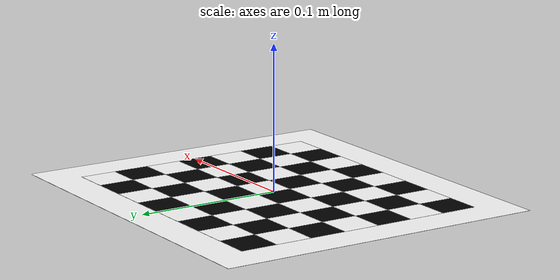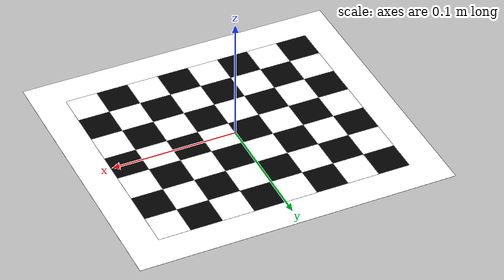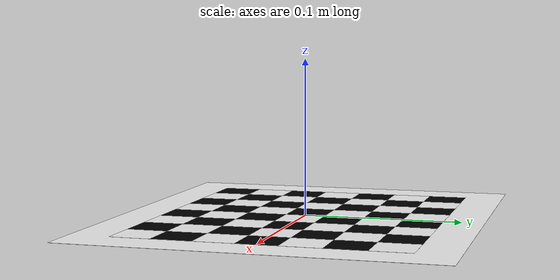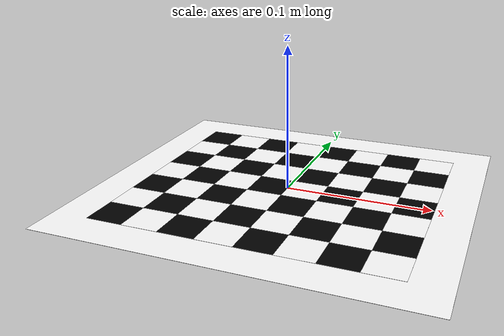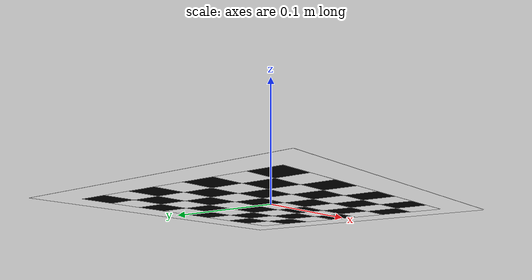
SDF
<?xml version="1.0"?>
<sdf version="1.4">
  <model name="checkerboard">
  <static>true</static>
  <link name="checkerboard_body">
      <visual name="checker_0_0">
        <pose>-0.08889999999999999 -0.07619999999999999 0 0 0 0</pose>
        <geometry>
          <box>
            <size>0.0254 0.0254 0.0002</size>
          </box>
        </geometry>
        <material>
          <ambient>0 0 0 1</ambient>
          <diffuse>0 0 0 1</diffuse>
          <specular>0 0 0 1</specular>
          <emissive>0 0 0 1</emissive>
        </material>
      </visual>
      <visual name="checker_0_1">
        <pose>-0.08889999999999999 -0.0508 0 0 0 0</pose>
        <geometry>
          <box>
            <size>0.0254 0.0254 0.0002</size>
          </box>
        </geometry>
        <material>
          <ambient>1 1 1 1</ambient>
          <diffuse>1 1 1 1</diffuse>
          <specular>1 1 1 1</specular>
          <emissive>1 1 1 1</emissive>
        </material>
      </visual>
      <visual name="checker_0_2">
        <pose>-0.08889999999999999 -0.025399999999999992 0 0 0 0</pose>
        <geometry>
          <box>
            <size>0.0254 0.0254 0.0002</size>
          </box>
        </geometry>
        <material>
          <ambient>0 0 0 1</ambient>
          <diffuse>0 0 0 1</diffuse>
          <specular>0 0 0 1</specular>
          <emissive>0 0 0 1</emissive>
        </material>
      </visual>
      <visual name="checker_0_3">
        <pose>-0.08889999999999999 0.0 0 0 0 0</pose>
        <geometry>
          <box>
            <size>0.0254 0.0254 0.0002</size>
          </box>
        </geometry>
        <material>
          <ambient>1 1 1 1</ambient>
          <diffuse>1 1 1 1</diffuse>
          <specular>1 1 1 1</specular>
          <emissive>1 1 1 1</emissive>
        </material>
      </visual>
      <visual name="checker_0_4">
        <pose>-0.08889999999999999 0.025400000000000006 0 0 0 0</pose>
        <geometry>
          <box>
            <size>0.0254 0.0254 0.0002</size>
          </box>
        </geometry>
        <material>
          <ambient>0 0 0 1</ambient>
          <diffuse>0 0 0 1</diffuse>
          <specular>0 0 0 1</specular>
          <emissive>0 0 0 1</emissive>
        </material>
      </visual>
      <visual name="checker_0_5">
        <pose>-0.08889999999999999 0.0508 0 0 0 0</pose>
        <geometry>
          <box>
            <size>0.0254 0.0254 0.0002</size>
          </box>
        </geometry>
        <material>
          <ambient>1 1 1 1</ambient>
          <diffuse>1 1 1 1</diffuse>
          <specular>1 1 1 1</specular>
          <emissive>1 1 1 1</emissive>
        </material>
      </visual>
      <visual name="checker_0_6">
        <pose>-0.08889999999999999 0.07619999999999998 0 0 0 0</pose>
        <geometry>
          <box>
            <size>0.0254 0.0254 0.0002</size>
          </box>
        </geometry>
        <material>
          <ambient>0 0 0 1</ambient>
          <diffuse>0 0 0 1</diffuse>
          <specular>0 0 0 1</specular>
          <emissive>0 0 0 1</emissive>
        </material>
      </visual>
      <visual name="checker_1_0">
        <pose>-0.0635 -0.07619999999999999 0 0 0 0</pose>
        <geometry>
          <box>
            <size>0.0254 0.0254 0.0002</size>
          </box>
        </geometry>
        <material>
          <ambient>1 1 1 1</ambient>
          <diffuse>1 1 1 1</diffuse>
          <specular>1 1 1 1</specular>
          <emissive>1 1 1 1</emissive>
        </material>
      </visual>
      <visual name="checker_1_1">
        <pose>-0.0635 -0.0508 0 0 0 0</pose>
        <geometry>
          <box>
            <size>0.0254 0.0254 0.0002</size>
          </box>
        </geometry>
        <material>
          <ambient>0 0 0 1</ambient>
          <diffuse>0 0 0 1</diffuse>
          <specular>0 0 0 1</specular>
          <emissive>0 0 0 1</emissive>
        </material>
      </visual>
      <visual name="checker_1_2">
        <pose>-0.0635 -0.025399999999999992 0 0 0 0</pose>
        <geometry>
          <box>
            <size>0.0254 0.0254 0.0002</size>
          </box>
        </geometry>
        <material>
          <ambient>1 1 1 1</ambient>
          <diffuse>1 1 1 1</diffuse>
          <specular>1 1 1 1</specular>
          <emissive>1 1 1 1</emissive>
        </material>
      </visual>
      <visual name="checker_1_3">
        <pose>-0.0635 0.0 0 0 0 0</pose>
        <geometry>
          <box>
            <size>0.0254 0.0254 0.0002</size>
          </box>
        </geometry>
        <material>
          <ambient>0 0 0 1</ambient>
          <diffuse>0 0 0 1</diffuse>
          <specular>0 0 0 1</specular>
          <emissive>0 0 0 1</emissive>
        </material>
      </visual>
      <visual name="checker_1_4">
        <pose>-0.0635 0.025400000000000006 0 0 0 0</pose>
        <geometry>
          <box>
            <size>0.0254 0.0254 0.0002</size>
          </box>
        </geometry>
        <material>
          <ambient>1 1 1 1</ambient>
          <diffuse>1 1 1 1</diffuse>
          <specular>1 1 1 1</specular>
          <emissive>1 1 1 1</emissive>
        </material>
      </visual>
      <visual name="checker_1_5">
        <pose>-0.0635 0.0508 0 0 0 0</pose>
        <geometry>
          <box>
            <size>0.0254 0.0254 0.0002</size>
          </box>
        </geometry>
        <material>
          <ambient>0 0 0 1</ambient>
          <diffuse>0 0 0 1</diffuse>
          <specular>0 0 0 1</specular>
          <emissive>0 0 0 1</emissive>
        </material>
      </visual>
      <visual name="checker_1_6">
        <pose>-0.0635 0.07619999999999998 0 0 0 0</pose>
        <geometry>
          <box>
            <size>0.0254 0.0254 0.0002</size>
          </box>
        </geometry>
        <material>
          <ambient>1 1 1 1</ambient>
          <diffuse>1 1 1 1</diffuse>
          <specular>1 1 1 1</specular>
          <emissive>1 1 1 1</emissive>
        </material>
      </visual>
      <visual name="checker_2_0">
        <pose>-0.038099999999999995 -0.07619999999999999 0 0 0 0</pose>
        <geometry>
          <box>
            <size>0.0254 0.0254 0.0002</size>
          </box>
        </geometry>
        <material>
          <ambient>0 0 0 1</ambient>
          <diffuse>0 0 0 1</diffuse>
          <specular>0 0 0 1</specular>
          <emissive>0 0 0 1</emissive>
        </material>
      </visual>
      <visual name="checker_2_1">
        <pose>-0.038099999999999995 -0.0508 0 0 0 0</pose>
        <geometry>
          <box>
            <size>0.0254 0.0254 0.0002</size>
          </box>
        </geometry>
        <material>
          <ambient>1 1 1 1</ambient>
          <diffuse>1 1 1 1</diffuse>
          <specular>1 1 1 1</specular>
          <emissive>1 1 1 1</emissive>
        </material>
      </visual>
      <visual name="checker_2_2">
        <pose>-0.038099999999999995 -0.025399999999999992 0 0 0 0</pose>
        <geometry>
          <box>
            <size>0.0254 0.0254 0.0002</size>
          </box>
        </geometry>
        <material>
          <ambient>0 0 0 1</ambient>
          <diffuse>0 0 0 1</diffuse>
          <specular>0 0 0 1</specular>
          <emissive>0 0 0 1</emissive>
        </material>
      </visual>
      <visual name="checker_2_3">
        <pose>-0.038099999999999995 0.0 0 0 0 0</pose>
        <geometry>
          <box>
            <size>0.0254 0.0254 0.0002</size>
          </box>
        </geometry>
        <material>
          <ambient>1 1 1 1</ambient>
          <diffuse>1 1 1 1</diffuse>
          <specular>1 1 1 1</specular>
          <emissive>1 1 1 1</emissive>
        </material>
      </visual>
      <visual name="checker_2_4">
        <pose>-0.038099999999999995 0.025400000000000006 0 0 0 0</pose>
        <geometry>
          <box>
            <size>0.0254 0.0254 0.0002</size>
          </box>
        </geometry>
        <material>
          <ambient>0 0 0 1</ambient>
          <diffuse>0 0 0 1</diffuse>
          <specular>0 0 0 1</specular>
          <emissive>0 0 0 1</emissive>
        </material>
      </visual>
      <visual name="checker_2_5">
        <pose>-0.038099999999999995 0.0508 0 0 0 0</pose>
        <geometry>
          <box>
            <size>0.0254 0.0254 0.0002</size>
          </box>
        </geometry>
        <material>
          <ambient>1 1 1 1</ambient>
          <diffuse>1 1 1 1</diffuse>
          <specular>1 1 1 1</specular>
          <emissive>1 1 1 1</emissive>
        </material>
      </visual>
      <visual name="checker_2_6">
        <pose>-0.038099999999999995 0.07619999999999998 0 0 0 0</pose>
        <geometry>
          <box>
            <size>0.0254 0.0254 0.0002</size>
          </box>
        </geometry>
        <material>
          <ambient>0 0 0 1</ambient>
          <diffuse>0 0 0 1</diffuse>
          <specular>0 0 0 1</specular>
          <emissive>0 0 0 1</emissive>
        </material>
      </visual>
      <visual name="checker_3_0">
        <pose>-0.012700000000000003 -0.07619999999999999 0 0 0 0</pose>
        <geometry>
          <box>
            <size>0.0254 0.0254 0.0002</size>
          </box>
        </geometry>
        <material>
          <ambient>1 1 1 1</ambient>
          <diffuse>1 1 1 1</diffuse>
          <specular>1 1 1 1</specular>
          <emissive>1 1 1 1</emissive>
        </material>
      </visual>
      <visual name="checker_3_1">
        <pose>-0.012700000000000003 -0.0508 0 0 0 0</pose>
        <geometry>
          <box>
            <size>0.0254 0.0254 0.0002</size>
          </box>
        </geometry>
        <material>
          <ambient>0 0 0 1</ambient>
          <diffuse>0 0 0 1</diffuse>
          <specular>0 0 0 1</specular>
          <emissive>0 0 0 1</emissive>
        </material>
      </visual>
      <visual name="checker_3_2">
        <pose>-0.012700000000000003 -0.025399999999999992 0 0 0 0</pose>
        <geometry>
          <box>
            <size>0.0254 0.0254 0.0002</size>
          </box>
        </geometry>
        <material>
          <ambient>1 1 1 1</ambient>
          <diffuse>1 1 1 1</diffuse>
          <specular>1 1 1 1</specular>
          <emissive>1 1 1 1</emissive>
        </material>
      </visual>
      <visual name="checker_3_3">
        <pose>-0.012700000000000003 0.0 0 0 0 0</pose>
        <geometry>
          <box>
            <size>0.0254 0.0254 0.0002</size>
          </box>
        </geometry>
        <material>
          <ambient>0 0 0 1</ambient>
          <diffuse>0 0 0 1</diffuse>
          <specular>0 0 0 1</specular>
          <emissive>0 0 0 1</emissive>
        </material>
      </visual>
      <visual name="checker_3_4">
        <pose>-0.012700000000000003 0.025400000000000006 0 0 0 0</pose>
        <geometry>
          <box>
            <size>0.0254 0.0254 0.0002</size>
          </box>
        </geometry>
        <material>
          <ambient>1 1 1 1</ambient>
          <diffuse>1 1 1 1</diffuse>
          <specular>1 1 1 1</specular>
          <emissive>1 1 1 1</emissive>
        </material>
      </visual>
      <visual name="checker_3_5">
        <pose>-0.012700000000000003 0.0508 0 0 0 0</pose>
        <geometry>
          <box>
            <size>0.0254 0.0254 0.0002</size>
          </box>
        </geometry>
        <material>
          <ambient>0 0 0 1</ambient>
          <diffuse>0 0 0 1</diffuse>
          <specular>0 0 0 1</specular>
          <emissive>0 0 0 1</emissive>
        </material>
      </visual>
      <visual name="checker_3_6">
        <pose>-0.012700000000000003 0.07619999999999998 0 0 0 0</pose>
        <geometry>
          <box>
            <size>0.0254 0.0254 0.0002</size>
          </box>
        </geometry>
        <material>
          <ambient>1 1 1 1</ambient>
          <diffuse>1 1 1 1</diffuse>
          <specular>1 1 1 1</specular>
          <emissive>1 1 1 1</emissive>
        </material>
      </visual>
      <visual name="checker_4_0">
        <pose>0.012700000000000003 -0.07619999999999999 0 0 0 0</pose>
        <geometry>
          <box>
            <size>0.0254 0.0254 0.0002</size>
          </box>
        </geometry>
        <material>
          <ambient>0 0 0 1</ambient>
          <diffuse>0 0 0 1</diffuse>
          <specular>0 0 0 1</specular>
          <emissive>0 0 0 1</emissive>
        </material>
      </visual>
      <visual name="checker_4_1">
        <pose>0.012700000000000003 -0.0508 0 0 0 0</pose>
        <geometry>
          <box>
            <size>0.0254 0.0254 0.0002</size>
          </box>
        </geometry>
        <material>
          <ambient>1 1 1 1</ambient>
          <diffuse>1 1 1 1</diffuse>
          <specular>1 1 1 1</specular>
          <emissive>1 1 1 1</emissive>
        </material>
      </visual>
      <visual name="checker_4_2">
        <pose>0.012700000000000003 -0.025399999999999992 0 0 0 0</pose>
        <geometry>
          <box>
            <size>0.0254 0.0254 0.0002</size>
          </box>
        </geometry>
        <material>
          <ambient>0 0 0 1</ambient>
          <diffuse>0 0 0 1</diffuse>
          <specular>0 0 0 1</specular>
          <emissive>0 0 0 1</emissive>
        </material>
      </visual>
      <visual name="checker_4_3">
        <pose>0.012700000000000003 0.0 0 0 0 0</pose>
        <geometry>
          <box>
            <size>0.0254 0.0254 0.0002</size>
          </box>
        </geometry>
        <material>
          <ambient>1 1 1 1</ambient>
          <diffuse>1 1 1 1</diffuse>
          <specular>1 1 1 1</specular>
          <emissive>1 1 1 1</emissive>
        </material>
      </visual>
      <visual name="checker_4_4">
        <pose>0.012700000000000003 0.025400000000000006 0 0 0 0</pose>
        <geometry>
          <box>
            <size>0.0254 0.0254 0.0002</size>
          </box>
        </geometry>
        <material>
          <ambient>0 0 0 1</ambient>
          <diffuse>0 0 0 1</diffuse>
          <specular>0 0 0 1</specular>
          <emissive>0 0 0 1</emissive>
        </material>
      </visual>
      <visual name="checker_4_5">
        <pose>0.012700000000000003 0.0508 0 0 0 0</pose>
        <geometry>
          <box>
            <size>0.0254 0.0254 0.0002</size>
          </box>
        </geometry>
        <material>
          <ambient>1 1 1 1</ambient>
          <diffuse>1 1 1 1</diffuse>
          <specular>1 1 1 1</specular>
          <emissive>1 1 1 1</emissive>
        </material>
      </visual>
      <visual name="checker_4_6">
        <pose>0.012700000000000003 0.07619999999999998 0 0 0 0</pose>
        <geometry>
          <box>
            <size>0.0254 0.0254 0.0002</size>
          </box>
        </geometry>
        <material>
          <ambient>0 0 0 1</ambient>
          <diffuse>0 0 0 1</diffuse>
          <specular>0 0 0 1</specular>
          <emissive>0 0 0 1</emissive>
        </material>
      </visual>
      <visual name="checker_5_0">
        <pose>0.038099999999999995 -0.07619999999999999 0 0 0 0</pose>
        <geometry>
          <box>
            <size>0.0254 0.0254 0.0002</size>
          </box>
        </geometry>
        <material>
          <ambient>1 1 1 1</ambient>
          <diffuse>1 1 1 1</diffuse>
          <specular>1 1 1 1</specular>
          <emissive>1 1 1 1</emissive>
        </material>
      </visual>
      <visual name="checker_5_1">
        <pose>0.038099999999999995 -0.0508 0 0 0 0</pose>
        <geometry>
          <box>
            <size>0.0254 0.0254 0.0002</size>
          </box>
        </geometry>
        <material>
          <ambient>0 0 0 1</ambient>
          <diffuse>0 0 0 1</diffuse>
          <specular>0 0 0 1</specular>
          <emissive>0 0 0 1</emissive>
        </material>
      </visual>
      <visual name="checker_5_2">
        <pose>0.038099999999999995 -0.025399999999999992 0 0 0 0</pose>
        <geometry>
          <box>
            <size>0.0254 0.0254 0.0002</size>
          </box>
        </geometry>
        <material>
          <ambient>1 1 1 1</ambient>
          <diffuse>1 1 1 1</diffuse>
          <specular>1 1 1 1</specular>
          <emissive>1 1 1 1</emissive>
        </material>
      </visual>
      <visual name="checker_5_3">
        <pose>0.038099999999999995 0.0 0 0 0 0</pose>
        <geometry>
          <box>
            <size>0.0254 0.0254 0.0002</size>
          </box>
        </geometry>
        <material>
          <ambient>0 0 0 1</ambient>
          <diffuse>0 0 0 1</diffuse>
          <specular>0 0 0 1</specular>
          <emissive>0 0 0 1</emissive>
        </material>
      </visual>
      <visual name="checker_5_4">
        <pose>0.038099999999999995 0.025400000000000006 0 0 0 0</pose>
        <geometry>
          <box>
            <size>0.0254 0.0254 0.0002</size>
          </box>
        </geometry>
        <material>
          <ambient>1 1 1 1</ambient>
          <diffuse>1 1 1 1</diffuse>
          <specular>1 1 1 1</specular>
          <emissive>1 1 1 1</emissive>
        </material>
      </visual>
      <visual name="checker_5_5">
        <pose>0.038099999999999995 0.0508 0 0 0 0</pose>
        <geometry>
          <box>
            <size>0.0254 0.0254 0.0002</size>
          </box>
        </geometry>
        <material>
          <ambient>0 0 0 1</ambient>
          <diffuse>0 0 0 1</diffuse>
          <specular>0 0 0 1</specular>
          <emissive>0 0 0 1</emissive>
        </material>
      </visual>
      <visual name="checker_5_6">
        <pose>0.038099999999999995 0.07619999999999998 0 0 0 0</pose>
        <geometry>
          <box>
            <size>0.0254 0.0254 0.0002</size>
          </box>
        </geometry>
        <material>
          <ambient>1 1 1 1</ambient>
          <diffuse>1 1 1 1</diffuse>
          <specular>1 1 1 1</specular>
          <emissive>1 1 1 1</emissive>
        </material>
      </visual>
      <visual name="checker_6_0">
        <pose>0.06349999999999997 -0.07619999999999999 0 0 0 0</pose>
        <geometry>
          <box>
            <size>0.0254 0.0254 0.0002</size>
          </box>
        </geometry>
        <material>
          <ambient>0 0 0 1</ambient>
          <diffuse>0 0 0 1</diffuse>
          <specular>0 0 0 1</specular>
          <emissive>0 0 0 1</emissive>
        </material>
      </visual>
      <visual name="checker_6_1">
        <pose>0.06349999999999997 -0.0508 0 0 0 0</pose>
        <geometry>
          <box>
            <size>0.0254 0.0254 0.0002</size>
          </box>
        </geometry>
        <material>
          <ambient>1 1 1 1</ambient>
          <diffuse>1 1 1 1</diffuse>
          <specular>1 1 1 1</specular>
          <emissive>1 1 1 1</emissive>
        </material>
      </visual>
      <visual name="checker_6_2">
        <pose>0.06349999999999997 -0.025399999999999992 0 0 0 0</pose>
        <geometry>
          <box>
            <size>0.0254 0.0254 0.0002</size>
          </box>
        </geometry>
        <material>
          <ambient>0 0 0 1</ambient>
          <diffuse>0 0 0 1</diffuse>
          <specular>0 0 0 1</specular>
          <emissive>0 0 0 1</emissive>
        </material>
      </visual>
      <visual name="checker_6_3">
        <pose>0.06349999999999997 0.0 0 0 0 0</pose>
        <geometry>
          <box>
            <size>0.0254 0.0254 0.0002</size>
          </box>
        </geometry>
        <material>
          <ambient>1 1 1 1</ambient>
          <diffuse>1 1 1 1</diffuse>
          <specular>1 1 1 1</specular>
          <emissive>1 1 1 1</emissive>
        </material>
      </visual>
      <visual name="checker_6_4">
        <pose>0.06349999999999997 0.025400000000000006 0 0 0 0</pose>
        <geometry>
          <box>
            <size>0.0254 0.0254 0.0002</size>
          </box>
        </geometry>
        <material>
          <ambient>0 0 0 1</ambient>
          <diffuse>0 0 0 1</diffuse>
          <specular>0 0 0 1</specular>
          <emissive>0 0 0 1</emissive>
        </material>
      </visual>
      <visual name="checker_6_5">
        <pose>0.06349999999999997 0.0508 0 0 0 0</pose>
        <geometry>
          <box>
            <size>0.0254 0.0254 0.0002</size>
          </box>
        </geometry>
        <material>
          <ambient>1 1 1 1</ambient>
          <diffuse>1 1 1 1</diffuse>
          <specular>1 1 1 1</specular>
          <emissive>1 1 1 1</emissive>
        </material>
      </visual>
      <visual name="checker_6_6">
        <pose>0.06349999999999997 0.07619999999999998 0 0 0 0</pose>
        <geometry>
          <box>
            <size>0.0254 0.0254 0.0002</size>
          </box>
        </geometry>
        <material>
          <ambient>0 0 0 1</ambient>
          <diffuse>0 0 0 1</diffuse>
          <specular>0 0 0 1</specular>
          <emissive>0 0 0 1</emissive>
        </material>
      </visual>
      <visual name="checker_7_0">
        <pose>0.08889999999999998 -0.07619999999999999 0 0 0 0</pose>
        <geometry>
          <box>
            <size>0.0254 0.0254 0.0002</size>
          </box>
        </geometry>
        <material>
          <ambient>1 1 1 1</ambient>
          <diffuse>1 1 1 1</diffuse>
          <specular>1 1 1 1</specular>
          <emissive>1 1 1 1</emissive>
        </material>
      </visual>
      <visual name="checker_7_1">
        <pose>0.08889999999999998 -0.0508 0 0 0 0</pose>
        <geometry>
          <box>
            <size>0.0254 0.0254 0.0002</size>
          </box>
        </geometry>
        <material>
          <ambient>0 0 0 1</ambient>
          <diffuse>0 0 0 1</diffuse>
          <specular>0 0 0 1</specular>
          <emissive>0 0 0 1</emissive>
        </material>
      </visual>
      <visual name="checker_7_2">
        <pose>0.08889999999999998 -0.025399999999999992 0 0 0 0</pose>
        <geometry>
          <box>
            <size>0.0254 0.0254 0.0002</size>
          </box>
        </geometry>
        <material>
          <ambient>1 1 1 1</ambient>
          <diffuse>1 1 1 1</diffuse>
          <specular>1 1 1 1</specular>
          <emissive>1 1 1 1</emissive>
        </material>
      </visual>
      <visual name="checker_7_3">
        <pose>0.08889999999999998 0.0 0 0 0 0</pose>
        <geometry>
          <box>
            <size>0.0254 0.0254 0.0002</size>
          </box>
        </geometry>
        <material>
          <ambient>0 0 0 1</ambient>
          <diffuse>0 0 0 1</diffuse>
          <specular>0 0 0 1</specular>
          <emissive>0 0 0 1</emissive>
        </material>
      </visual>
      <visual name="checker_7_4">
        <pose>0.08889999999999998 0.025400000000000006 0 0 0 0</pose>
        <geometry>
          <box>
            <size>0.0254 0.0254 0.0002</size>
          </box>
        </geometry>
        <material>
          <ambient>1 1 1 1</ambient>
          <diffuse>1 1 1 1</diffuse>
          <specular>1 1 1 1</specular>
          <emissive>1 1 1 1</emissive>
        </material>
      </visual>
      <visual name="checker_7_5">
        <pose>0.08889999999999998 0.0508 0 0 0 0</pose>
        <geometry>
          <box>
            <size>0.0254 0.0254 0.0002</size>
          </box>
        </geometry>
        <material>
          <ambient>0 0 0 1</ambient>
          <diffuse>0 0 0 1</diffuse>
          <specular>0 0 0 1</specular>
          <emissive>0 0 0 1</emissive>
        </material>
      </visual>
      <visual name="checker_7_6">
        <pose>0.08889999999999998 0.07619999999999998 0 0 0 0</pose>
        <geometry>
          <box>
            <size>0.0254 0.0254 0.0002</size>
          </box>
        </geometry>
        <material>
          <ambient>1 1 1 1</ambient>
          <diffuse>1 1 1 1</diffuse>
          <specular>1 1 1 1</specular>
          <emissive>1 1 1 1</emissive>
        </material>
      </visual>
      <visual name="checker_backdrop">
        <pose>0 0 0 0 0 0</pose>
        <geometry>
          <box>
            <size>0.254 0.2286 0.0001</size>
          </box>
        </geometry>
        <material>
          <ambient>1 1 1 1</ambient>
          <diffuse>1 1 1 1</diffuse>
          <specular>1 1 1 1</specular>
          <emissive>1 1 1 1</emissive>
        </material>
      </visual>
    </link>
  </model>
</sdf>
